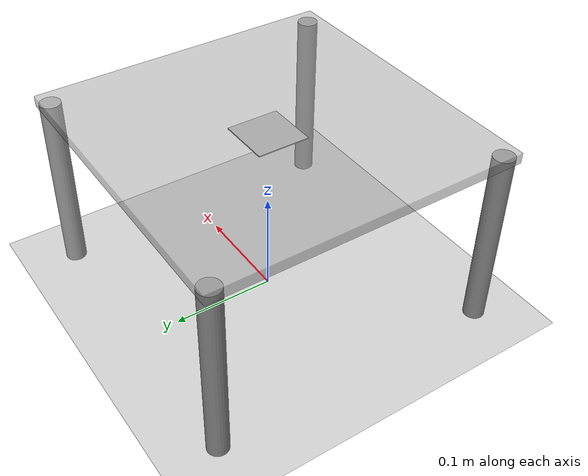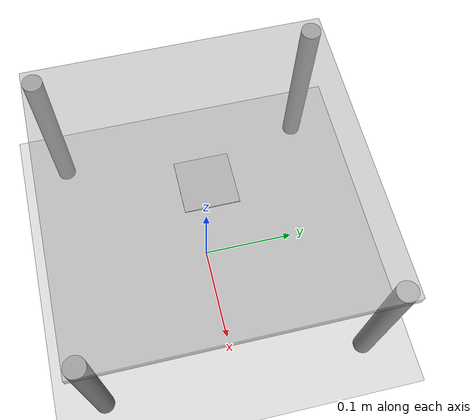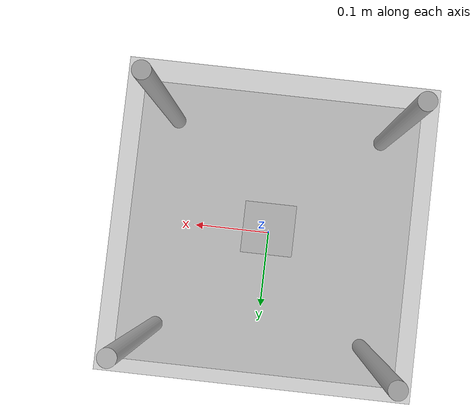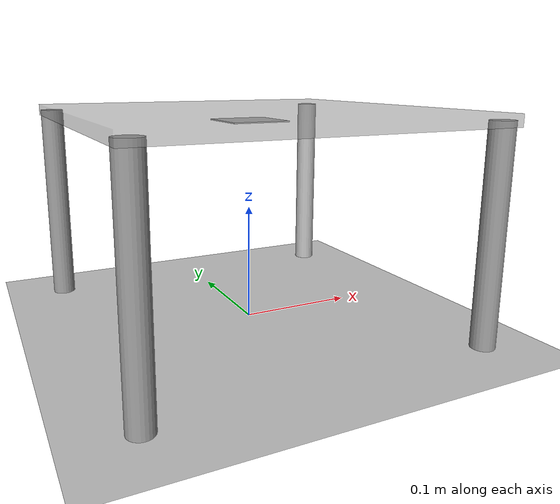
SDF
<sdf version='1.6'>
  <world name='default'>
    <physics name='default_physics' default='0' type='ode'>
      <max_step_size>0.002</max_step_size>
      <real_time_factor>1</real_time_factor>
      <real_time_update_rate>0</real_time_update_rate>
      <ode> <solver> <type>quick</type> </solver> </ode>
    </physics>
    <gui>
      <camera name="user_camera">
        <pose>-2.0 0 6 0 1.25 0</pose>
      </camera>
    </gui>

    <include>
      <uri>model://ground_plane</uri>
      <pose>0 0 0 0 0 0</pose>
    </include>

    <include>
      <uri>model://sun</uri>
      <pose>0 0 0 0 0 0</pose>
    </include>

    <include>
      <uri>model://carrier</uri>
      <pose>0 0 0 0 0 0</pose>
      <scale>2 2 2</scale>
    </include>

  </world>
</sdf>

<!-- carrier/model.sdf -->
<sdf version="1.5">
  <model name="carrier">
    <static>false</static>
    <link name="base_link">
      <inertial>
        <mass>1.0</mass>
        <inertia><ixx>0.001</ixx><iyy>0.001</iyy><izz>0.001</izz></inertia>
      </inertial>
      <collision name="surface">
        <pose>0 0 0.18 0 0 0</pose>
        <geometry>
          <box>
            <size>0.3 0.3 0.01</size>
          </box>
        </geometry>
        <surface>
          <friction>
            <ode>
              <mu>Inf</mu>
              <mu2>Inf</mu2>
            </ode>
          </friction>
        </surface>
      </collision>
      <visual name="visual1">
        <pose>0 0 0.18 0 0 0</pose>
        <geometry>
          <box>
            <size>0.3 0.3 0.01</size>
          </box>
        </geometry>
        <material>
          <script>
            <uri>file://media/materials/scripts/gazebo.material</uri>
            <name>Gazebo/GreyTransparent</name>
          </script>
        </material>
      </visual>
      <visual name="tag1">
        <pose>0 0 0.175 3.14159 0 0</pose>
        <geometry>
          <box>
            <size>0.05 0.05 0.001</size>
          </box>
        </geometry>
        <material>
          <script>
            <uri>file://media/materials/scripts/tag.material</uri>
            <name>tag100</name>
          </script>
        </material>
      </visual>
      <collision name="front_left_leg">
        <pose>0.14 0.14 0.09 0 0 0</pose>
        <geometry>
          <cylinder>
            <radius>0.01</radius>
            <length>0.18</length>
          </cylinder>
        </geometry>
      </collision>
      <visual name="front_left_leg">
        <pose>0.14 0.14 0.09 0 0 0</pose>
        <geometry>
          <cylinder>
            <radius>0.01</radius>
            <length>0.18</length>
          </cylinder>
        </geometry>
        <material>
          <script>
            <uri>file://media/materials/scripts/gazebo.material</uri>
          </script>
        </material>
      </visual>
      <collision name="front_right_leg">
        <pose>0.14 -0.14 0.09 0 0 0</pose>
        <geometry>
          <cylinder>
            <radius>0.01</radius>
            <length>0.18</length>
          </cylinder>
        </geometry>
      </collision>
      <visual name="front_right_leg">
        <pose>0.14 -0.14 0.09 0 0 0</pose>
        <geometry>
          <cylinder>
            <radius>0.01</radius>
            <length>0.18</length>
          </cylinder>
        </geometry>
        <material>
          <script>
            <uri>file://media/materials/scripts/gazebo.material</uri>
            <name>Gazebo/Grey</name>
          </script>
        </material>
      </visual>
      <collision name="back_right_leg">
        <pose>-0.14 -0.14 0.09 0 0 0</pose>
        <geometry>
          <cylinder>
            <radius>0.01</radius>
            <length>0.18</length>
          </cylinder>
        </geometry>
      </collision>
      <visual name="back_right_leg">
        <pose>-0.14 -0.14 0.09 0 0 0</pose>
        <geometry>
          <cylinder>
            <radius>0.01</radius>
            <length>0.18</length>
          </cylinder>
        </geometry>
        <material>
          <script>
            <uri>file://media/materials/scripts/gazebo.material</uri>
            <name>Gazebo/Grey</name>
          </script>
        </material>
      </visual>
      <collision name="back_left_leg">
        <pose>-0.14 0.14 0.09 0 0 0</pose>
        <geometry>
          <cylinder>
            <radius>0.01</radius>
            <length>0.18</length>
          </cylinder>
        </geometry>
      </collision>
      <visual name="back_left_leg">
        <pose>-0.14 0.14 0.09 0 0 0</pose>
        <geometry>
          <cylinder>
            <radius>0.01</radius>
            <length>0.18</length>
          </cylinder>
        </geometry>
        <material>
          <script>
            <uri>file://media/materials/scripts/gazebo.material</uri>
            <name>Gazebo/Grey</name>
          </script>
        </material>
      </visual>
    </link>
    <plugin name="gazebo_ros_p3d" filename="libgazebo_ros_p3d.so">
      <ros>
        <remapping>odom:=ground_truth</remapping>
        <namespace>carrier</namespace>
      </ros>
      <body_name>base_link</body_name>

      <frame_name>odom</frame_name>
      <update_rate>50</update_rate>
      <xyz_offsets>0.0 0.0 0.0</xyz_offsets>
      <rpy_offsets>0.0 0.0 0.0</rpy_offsets>
      <gaussian_noise>0.01</gaussian_noise>
    </plugin>
  </model>
</sdf>
